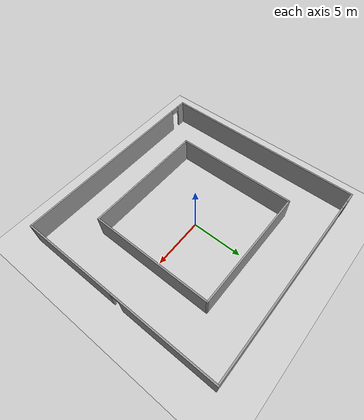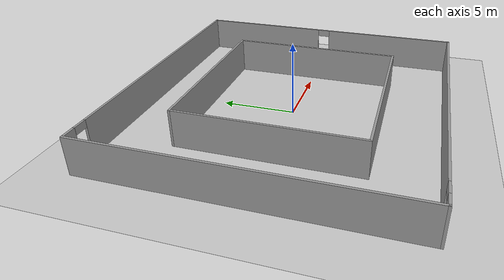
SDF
<sdf version="1.7">
 <world name="default">
  <light name="sun" type="directional">
   <pose>0 0 10 0 -0 0</pose>
   <diffuse>0.8 0.8 0.8 1</diffuse>
   <specular>0.2 0.2 0.2 1</specular>
   <attenuation>
    <range>1000</range>
    <constant>0.9</constant>
    <linear>0.01</linear>
    <quadratic>0.001</quadratic>
   </attenuation>
   <direction>-0.5 0.1 -0.9</direction>
   <spot><inner_angle>0</inner_angle><outer_angle>0</outer_angle><falloff>0</falloff></spot>
  </light>
  <model name="ground_plane">
   <static>1</static>
   <link name="link">
    <collision name="collision">
     <geometry><plane><normal>0 0 1</normal><size>100 100</size></plane></geometry>
     <surface>
      <contact><collide_bitmask>65535</collide_bitmask></contact>
      <friction><ode><mu>100</mu><mu2>50</mu2></ode></friction>
     </surface>
    </collision>
    <visual name="visual">
     <cast_shadows>0</cast_shadows>
     <geometry><plane><normal>0 0 1</normal><size>100 100</size></plane></geometry>
     <material>
      <script><uri>file://media/materials/scripts/gazebo.material</uri><name>Gazebo/Grey</name></script>
     </material>
    </visual>
   </link>
  </model>
  <gravity>0 0 -9.8</gravity>
  <magnetic_field>6e-06 2.3e-05 -4.2e-05</magnetic_field>
  <atmosphere type="adiabatic"/>
  <physics type="ode">
   <max_step_size>0.001</max_step_size>
   <real_time_factor>1</real_time_factor>
   <real_time_update_rate>1000</real_time_update_rate>
  </physics>
  <scene><ambient>0.4 0.4 0.4 1</ambient><background>0.7 0.7 0.7 1</background><shadows>1</shadows></scene>
  <spherical_coordinates>
   <surface_model>EARTH_WGS84</surface_model>
   <latitude_deg>0</latitude_deg>
   <longitude_deg>0</longitude_deg>
   <elevation>0</elevation>
   <heading_deg>0</heading_deg>
  </spherical_coordinates>
  <model name="square_corridors_w_doors">
   <pose>-0.048887 0.009334 0 0 -0 0</pose>
   <link name="Wall_10">
    <collision name="Wall_10_Collision">
     <geometry><box><size>20 0.15 2.5</size></box></geometry>
     <pose>0 0 1.25 0 -0 0</pose>
    </collision>
    <visual name="Wall_10_Visual">
     <pose>0 0 1.25 0 -0 0</pose>
     <geometry><box><size>20 0.15 2.5</size></box></geometry>
     <material>
      <script><uri>file://media/materials/scripts/gazebo.material</uri><name>Gazebo/Grey</name></script>
      <ambient>1 1 1 1</ambient>
     </material>
     <meta><layer>0</layer></meta>
    </visual>
    <pose>-10.05 -0 0 0 -0 1.5708</pose>
   </link>
   <link name="Wall_12">
    <pose>0 9.925 0 0 -0 0</pose>
    <visual name="Wall_12_Visual_0">
     <pose>-9.61464 0 1.25 0 -0 0</pose>
     <geometry><box><size>1.02072 0.15 2.5</size></box></geometry>
     <material>
      <script><uri>file://media/materials/scripts/gazebo.material</uri><name>Gazebo/Grey</name></script>
      <ambient>1 1 1 1</ambient>
     </material>
     <meta><layer>0</layer></meta>
    </visual>
    <collision name="Wall_12_Collision_0">
     <geometry><box><size>1.02072 0.15 2.5</size></box></geometry>
     <pose>-9.61464 0 1.25 0 -0 0</pose>
    </collision>
    <visual name="Wall_12_Visual_1">
     <pose>0.960359 0 1.25 0 -0 0</pose>
     <geometry><box><size>18.3293 0.15 2.5</size></box></geometry>
     <material>
      <script><uri>file://media/materials/scripts/gazebo.material</uri><name>Gazebo/Grey</name></script>
      <ambient>1 1 1 1</ambient>
     </material>
     <meta><layer>0</layer></meta>
    </visual>
    <collision name="Wall_12_Collision_1">
     <geometry><box><size>18.3293 0.15 2.5</size></box></geometry>
     <pose>0.960359 0 1.25 0 -0 0</pose>
    </collision>
    <visual name="Wall_12_Visual_2">
     <pose>-8.65428 0 2.25 0 -0 0</pose>
     <geometry><box><size>0.9 0.15 0.5</size></box></geometry>
     <material>
      <script><uri>file://media/materials/scripts/gazebo.material</uri><name>Gazebo/Grey</name></script>
      <ambient>1 1 1 1</ambient>
     </material>
     <meta><layer>0</layer></meta>
    </visual>
    <collision name="Wall_12_Collision_2">
     <geometry><box><size>0.9 0.15 0.5</size></box></geometry>
     <pose>-8.65428 0 2.25 0 -0 0</pose>
    </collision>
   </link>
   <link name="Wall_13">
    <pose>10.05 -0 0 0 -0 -1.5708</pose>
    <visual name="Wall_13_Visual_0">
     <pose>-5.28708 0 1.25 0 -0 0</pose>
     <geometry><box><size>9.42583 0.15 2.5</size></box></geometry>
     <material>
      <script><uri>file://media/materials/scripts/gazebo.material</uri><name>Gazebo/Grey</name></script>
      <ambient>1 1 1 1</ambient>
     </material>
     <meta><layer>0</layer></meta>
    </visual>
    <collision name="Wall_13_Collision_0">
     <geometry><box><size>9.42583 0.15 2.5</size></box></geometry>
     <pose>-5.28708 0 1.25 0 -0 0</pose>
    </collision>
    <visual name="Wall_13_Visual_1">
     <pose>5.16292 0 1.25 0 -0 0</pose>
     <geometry><box><size>9.67417 0.15 2.5</size></box></geometry>
     <material>
      <script><uri>file://media/materials/scripts/gazebo.material</uri><name>Gazebo/Grey</name></script>
      <ambient>1 1 1 1</ambient>
     </material>
     <meta><layer>0</layer></meta>
    </visual>
    <collision name="Wall_13_Collision_1">
     <geometry><box><size>9.67417 0.15 2.5</size></box></geometry>
     <pose>5.16292 0 1.25 0 -0 0</pose>
    </collision>
    <visual name="Wall_13_Visual_2">
     <pose>-0.124165 0 2.25 0 -0 0</pose>
     <geometry><box><size>0.9 0.15 0.5</size></box></geometry>
     <material>
      <script><uri>file://media/materials/scripts/gazebo.material</uri><name>Gazebo/Grey</name></script>
      <ambient>1 1 1 1</ambient>
     </material>
     <meta><layer>0</layer></meta>
    </visual>
    <collision name="Wall_13_Collision_2">
     <geometry><box><size>0.9 0.15 0.5</size></box></geometry>
     <pose>-0.124165 0 2.25 0 -0 0</pose>
    </collision>
   </link>
   <link name="Wall_14">
    <pose>0 -9.925 0 0 -0 3.14159</pose>
    <visual name="Wall_14_Visual_0">
     <pose>-0.913835 0 1.25 0 -0 0</pose>
     <geometry><box><size>18.4223 0.15 2.5</size></box></geometry>
     <material>
      <script><uri>file://media/materials/scripts/gazebo.material</uri><name>Gazebo/Grey</name></script>
      <ambient>1 1 1 1</ambient>
     </material>
     <meta><layer>0</layer></meta>
    </visual>
    <collision name="Wall_14_Collision_0">
     <geometry><box><size>18.4223 0.15 2.5</size></box></geometry>
     <pose>-0.913835 0 1.25 0 -0 0</pose>
    </collision>
    <visual name="Wall_14_Visual_1">
     <pose>9.66117 0 1.25 0 -0 0</pose>
     <geometry><box><size>0.927669 0.15 2.5</size></box></geometry>
     <material>
      <script><uri>file://media/materials/scripts/gazebo.material</uri><name>Gazebo/Grey</name></script>
      <ambient>1 1 1 1</ambient>
     </material>
     <meta><layer>0</layer></meta>
    </visual>
    <collision name="Wall_14_Collision_1">
     <geometry><box><size>0.927669 0.15 2.5</size></box></geometry>
     <pose>9.66117 0 1.25 0 -0 0</pose>
    </collision>
    <visual name="Wall_14_Visual_2">
     <pose>8.74733 0 2.25 0 -0 0</pose>
     <geometry><box><size>0.9 0.15 0.5</size></box></geometry>
     <material>
      <script><uri>file://media/materials/scripts/gazebo.material</uri><name>Gazebo/Grey</name></script>
      <ambient>1 1 1 1</ambient>
     </material>
     <meta><layer>0</layer></meta>
    </visual>
    <collision name="Wall_14_Collision_2">
     <geometry><box><size>0.9 0.15 0.5</size></box></geometry>
     <pose>8.74733 0 2.25 0 -0 0</pose>
    </collision>
   </link>
   <link name="Wall_17">
    <collision name="Wall_17_Collision">
     <geometry><box><size>12 0.15 2.5</size></box></geometry>
     <pose>0 0 1.25 0 -0 0</pose>
    </collision>
    <visual name="Wall_17_Visual">
     <pose>0 0 1.25 0 -0 0</pose>
     <geometry><box><size>12 0.15 2.5</size></box></geometry>
     <material>
      <script><uri>file://media/materials/scripts/gazebo.material</uri><name>Gazebo/Grey</name></script>
      <ambient>1 1 1 1</ambient>
     </material>
     <meta><layer>0</layer></meta>
    </visual>
    <pose>0.038626 -5.97047 0 0 -0 0</pose>
   </link>
   <link name="Wall_19">
    <collision name="Wall_19_Collision">
     <geometry><box><size>12 0.15 2.5</size></box></geometry>
     <pose>0 0 1.25 0 -0 0</pose>
    </collision>
    <visual name="Wall_19_Visual">
     <pose>0 0 1.25 0 -0 0</pose>
     <geometry><box><size>12 0.15 2.5</size></box></geometry>
     <material>
      <script><uri>file://media/materials/scripts/gazebo.material</uri><name>Gazebo/Grey</name></script>
      <ambient>1 1 1 1</ambient>
     </material>
     <meta><layer>0</layer></meta>
    </visual>
    <pose>5.96363 -0.045468 0 0 -0 1.5708</pose>
   </link>
   <link name="Wall_21">
    <collision name="Wall_21_Collision">
     <geometry><box><size>12 0.15 2.5</size></box></geometry>
     <pose>0 0 1.25 0 -0 0</pose>
    </collision>
    <visual name="Wall_21_Visual">
     <pose>0 0 1.25 0 -0 0</pose>
     <geometry><box><size>12 0.15 2.5</size></box></geometry>
     <material>
      <script><uri>file://media/materials/scripts/gazebo.material</uri><name>Gazebo/Grey</name></script>
      <ambient>1 1 1 1</ambient>
     </material>
     <meta><layer>0</layer></meta>
    </visual>
    <pose>0.038626 5.87953 0 0 -0 3.14159</pose>
   </link>
   <link name="Wall_23">
    <collision name="Wall_23_Collision">
     <geometry><box><size>12 0.15 2.5</size></box></geometry>
     <pose>0 0 1.25 0 -0 0</pose>
    </collision>
    <visual name="Wall_23_Visual">
     <pose>0 0 1.25 0 -0 0</pose>
     <geometry><box><size>12 0.15 2.5</size></box></geometry>
     <material>
      <script><uri>file://media/materials/scripts/gazebo.material</uri><name>Gazebo/Grey</name></script>
      <ambient>1 1 1 1</ambient>
     </material>
     <meta><layer>0</layer></meta>
    </visual>
    <pose>-5.88637 -0.045468 0 0 -0 -1.5708</pose>
   </link>
   <static>1</static>
  </model>
 </world>
</sdf>
